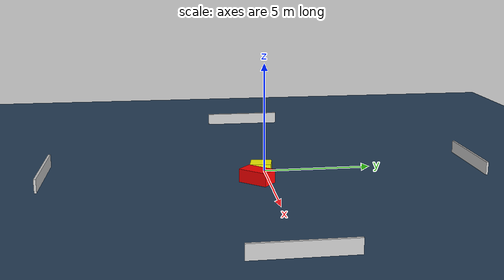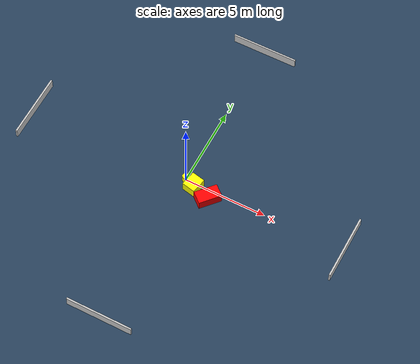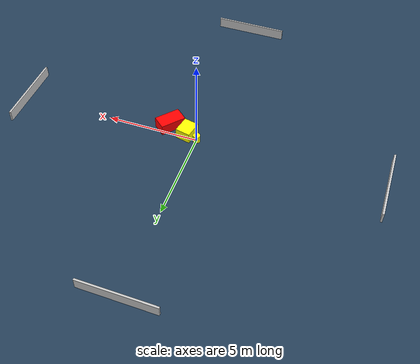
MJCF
<?xml version="1.0" ?>
<mujoco model="generated_environment">
  <option timestep="0.01" integrator="RK4" cone="elliptic"/>
  <default>
    <geom density="1"/>
  </default>
  <asset>
    <texture builtin="gradient" height="3072" name="skybox" rgb1="0.3 0.5 0.7" rgb2="0 0 0" type="skybox" width="512"/>
    <texture builtin="checker" height="300" name="groundplane" rgb1="0.2 0.3 0.4" rgb2="0.1 0.2 0.3" type="2d" width="300"/>
    <material name="groundplane" reflectance="0.2" texrepeat="5 5" texture="groundplane"/>
  </asset>
  <worldbody>
    <light dir="0 0 -1" directional="true" pos="0 0 1.5"/>
    <geom condim="3" friction="0.5 0.005 0.001" material="groundplane" name="floor" pos="0 0 0" size="0 0 0.05" type="plane"/>
    <body name="walls">
      <geom name="wall_1" condim="4" pos="-10.0 0.0 0.3" rgba="0.800000011920929 0.800000011920929 0.800000011920929 1.0" size="0.05 2.0 0.3" type="box"/>
      <geom name="wall_2" condim="4" pos="10.0 0.0 0.3" rgba="0.800000011920929 0.800000011920929 0.800000011920929 1.0" size="0.05 2.0 0.3" type="box"/>
      <geom name="wall_3" condim="4" pos="0.0 -10.0 0.3" rgba="0.800000011920929 0.800000011920929 0.800000011920929 1.0" size="2.0 0.05 0.3" type="box"/>
      <geom name="wall_4" condim="4" pos="0.0 10.0 0.3" rgba="0.800000011920929 0.800000011920929 0.800000011920929 1.0" size="2.0 0.05 0.3" type="box"/>
    </body>
    <body name="robot">
      <joint name="joint_x" type="slide" pos="0 0 0" axis="1 0 0"/>
      <joint name="joint_y" type="slide" pos="0 0 0" axis="0 1 0"/>
      <geom name="robot" type="cylinder" pos="0.0 0.0 0.2" size="0.2 0.2 0.0" mass="5.0" friction="1.0 0.005 0.0001" condim="4" rgba="1.0 1.0 0.0 1.0"/>
    </body>
    <body name="obstacle_1_movable">
      <geom name="obstacle_1_movable" condim="4" pos="0.6224427915043801 -0.24314903074314567 0.3" euler="0 0 258.25513388770105" friction="0.0 0.005 0.001" rgba="1.0 1.0 0.0 1.0" size="0.47298978228538774 0.40807621589742255 0.3" type="box" mass="0.1"/>
      <joint type="free"/>
    </body>
    <body name="obstacle_2_static">
      <geom name="obstacle_2_static" condim="4" pos="1.7058072193618465 -0.552632330469668 0.3" euler="0 0 229.36560730261553" friction="0.0 0.005 0.001" rgba="1.0 0.0 0.0 1.0" size="0.6963519936392577 0.3985456733871134 0.3" type="box"/>
    </body>
  </worldbody>
  <actuator>
    <motor name="actuator_x" joint="joint_x" gear="1" ctrlrange="-1 1"/>
    <motor name="actuator_y" joint="joint_y" gear="1" ctrlrange="-1 1"/>
  </actuator>
</mujoco>
